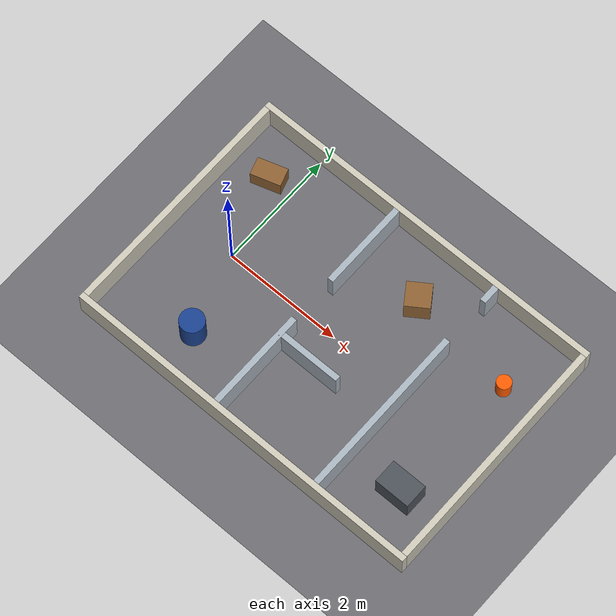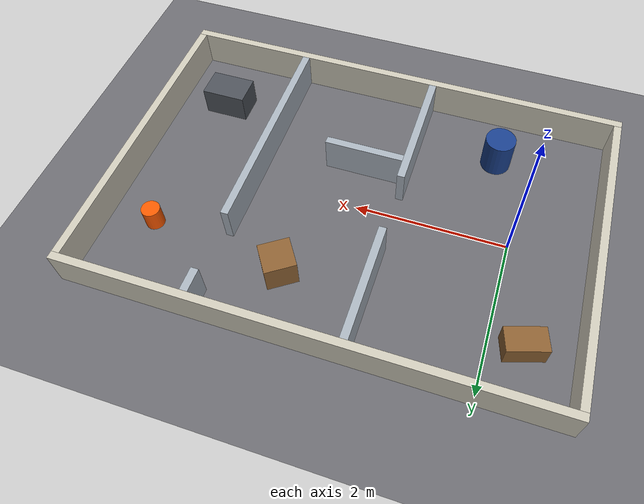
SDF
<?xml version="1.0"?>
<sdf version="1.9">
  <world name="firehouse">
    <!-- 4 ms steps. With 1 ms steps and the full Nav2 stack running, a 12-core PC
         could only simulate at 0.3x real time, which slows every sensor to match. -->
    <physics name="4ms" type="ignored">
      <max_step_size>0.004</max_step_size>
      <real_time_factor>1.0</real_time_factor>
    </physics>

    <plugin filename="gz-sim-physics-system" name="gz::sim::systems::Physics" />
    <plugin filename="gz-sim-user-commands-system" name="gz::sim::systems::UserCommands" />
    <plugin filename="gz-sim-scene-broadcaster-system" name="gz::sim::systems::SceneBroadcaster" />
    <plugin filename="gz-sim-sensors-system" name="gz::sim::systems::Sensors">
      <render_engine>ogre2</render_engine>
    </plugin>

    <scene>
      <ambient>0.45 0.45 0.48 1</ambient>
      <background>0.10 0.11 0.13 1</background>
      <shadows>true</shadows>
    </scene>

    <light name="ceiling" type="directional">
      <cast_shadows>true</cast_shadows>
      <pose>0 0 10 0 0 0</pose>
      <diffuse>0.85 0.85 0.82 1</diffuse>
      <specular>0.2 0.2 0.2 1</specular>
      <direction>-0.3 0.2 -0.93</direction>
    </light>

    <model name="floor">
      <static>true</static>
      <link name="link">
        <collision name="collision">
          <geometry><plane><normal>0 0 1</normal><size>20 20</size></plane></geometry>
        </collision>
        <visual name="visual">
          <geometry><plane><normal>0 0 1</normal><size>20 20</size></plane></geometry>
          <material>
            <ambient>0.42 0.42 0.44 1</ambient>
            <diffuse>0.42 0.42 0.44 1</diffuse>
            <specular>0.05 0.05 0.05 1</specular>
          </material>
        </visual>
      </link>
    </model>

    <!-- Walls: 0.1 m thick, 0.5 m tall (the LiDAR scans at 0.22 m). -->
    <model name="walls">
      <static>true</static>
      <link name="link">
        <!-- outer shell -->
        <collision name="south_c"><pose>2 -2.05 0.25 0 0 0</pose><geometry><box><size>6.2 0.1 0.5</size></box></geometry></collision>
        <visual name="south_v"><pose>2 -2.05 0.25 0 0 0</pose><geometry><box><size>6.2 0.1 0.5</size></box></geometry><material><ambient>0.80 0.78 0.72 1</ambient><diffuse>0.80 0.78 0.72 1</diffuse></material></visual>
        <collision name="north_c"><pose>2 2.05 0.25 0 0 0</pose><geometry><box><size>6.2 0.1 0.5</size></box></geometry></collision>
        <visual name="north_v"><pose>2 2.05 0.25 0 0 0</pose><geometry><box><size>6.2 0.1 0.5</size></box></geometry><material><ambient>0.80 0.78 0.72 1</ambient><diffuse>0.80 0.78 0.72 1</diffuse></material></visual>
        <collision name="west_c"><pose>-1.05 0 0.25 0 0 0</pose><geometry><box><size>0.1 4.0 0.5</size></box></geometry></collision>
        <visual name="west_v"><pose>-1.05 0 0.25 0 0 0</pose><geometry><box><size>0.1 4.0 0.5</size></box></geometry><material><ambient>0.80 0.78 0.72 1</ambient><diffuse>0.80 0.78 0.72 1</diffuse></material></visual>
        <collision name="east_c"><pose>5.05 0 0.25 0 0 0</pose><geometry><box><size>0.1 4.0 0.5</size></box></geometry></collision>
        <visual name="east_v"><pose>5.05 0 0.25 0 0 0</pose><geometry><box><size>0.1 4.0 0.5</size></box></geometry><material><ambient>0.80 0.78 0.72 1</ambient><diffuse>0.80 0.78 0.72 1</diffuse></material></visual>

        <!-- west | middle divider at x = 1.5, door at y = -0.3 .. 0.5 -->
        <collision name="div_a_south_c"><pose>1.5 -1.15 0.25 0 0 0</pose><geometry><box><size>0.1 1.7 0.5</size></box></geometry></collision>
        <visual name="div_a_south_v"><pose>1.5 -1.15 0.25 0 0 0</pose><geometry><box><size>0.1 1.7 0.5</size></box></geometry><material><ambient>0.66 0.70 0.74 1</ambient><diffuse>0.66 0.70 0.74 1</diffuse></material></visual>
        <collision name="div_a_north_c"><pose>1.5 1.25 0.25 0 0 0</pose><geometry><box><size>0.1 1.5 0.5</size></box></geometry></collision>
        <visual name="div_a_north_v"><pose>1.5 1.25 0.25 0 0 0</pose><geometry><box><size>0.1 1.5 0.5</size></box></geometry><material><ambient>0.66 0.70 0.74 1</ambient><diffuse>0.66 0.70 0.74 1</diffuse></material></visual>

        <!-- middle | east divider at x = 3.4, door at y = 0.9 .. 1.7 -->
        <collision name="div_b_south_c"><pose>3.4 -0.55 0.25 0 0 0</pose><geometry><box><size>0.1 2.9 0.5</size></box></geometry></collision>
        <visual name="div_b_south_v"><pose>3.4 -0.55 0.25 0 0 0</pose><geometry><box><size>0.1 2.9 0.5</size></box></geometry><material><ambient>0.66 0.70 0.74 1</ambient><diffuse>0.66 0.70 0.74 1</diffuse></material></visual>
        <collision name="div_b_north_c"><pose>3.4 1.85 0.25 0 0 0</pose><geometry><box><size>0.1 0.3 0.5</size></box></geometry></collision>
        <visual name="div_b_north_v"><pose>3.4 1.85 0.25 0 0 0</pose><geometry><box><size>0.1 0.3 0.5</size></box></geometry><material><ambient>0.66 0.70 0.74 1</ambient><diffuse>0.66 0.70 0.74 1</diffuse></material></visual>

        <!-- partition inside the middle room -->
        <collision name="partition_c"><pose>2.05 -0.6 0.25 0 0 0</pose><geometry><box><size>1.1 0.1 0.5</size></box></geometry></collision>
        <visual name="partition_v"><pose>2.05 -0.6 0.25 0 0 0</pose><geometry><box><size>1.1 0.1 0.5</size></box></geometry><material><ambient>0.66 0.70 0.74 1</ambient><diffuse>0.66 0.70 0.74 1</diffuse></material></visual>
      </link>
    </model>

    <!-- Obstacles -->
    <model name="crate_west">
      <static>true</static>
      <pose>-0.4 1.3 0.15 0 0 0.3</pose>
      <link name="link">
        <collision name="collision"><geometry><box><size>0.5 0.3 0.3</size></box></geometry></collision>
        <visual name="visual">
          <geometry><box><size>0.5 0.3 0.3</size></box></geometry>
          <material><ambient>0.55 0.38 0.20 1</ambient><diffuse>0.55 0.38 0.20 1</diffuse></material>
        </visual>
      </link>
    </model>

    <model name="barrel">
      <static>true</static>
      <pose>0.4 -1.3 0.25 0 0 0</pose>
      <link name="link">
        <collision name="collision"><geometry><cylinder><radius>0.2</radius><length>0.5</length></cylinder></geometry></collision>
        <visual name="visual">
          <geometry><cylinder><radius>0.2</radius><length>0.5</length></cylinder></geometry>
          <material><ambient>0.10 0.25 0.55 1</ambient><diffuse>0.10 0.25 0.55 1</diffuse></material>
        </visual>
      </link>
    </model>

    <model name="crate_middle">
      <static>true</static>
      <pose>2.6 1.2 0.2 0 0 0.6</pose>
      <link name="link">
        <collision name="collision"><geometry><box><size>0.4 0.4 0.4</size></box></geometry></collision>
        <visual name="visual">
          <geometry><box><size>0.4 0.4 0.4</size></box></geometry>
          <material><ambient>0.55 0.38 0.20 1</ambient><diffuse>0.55 0.38 0.20 1</diffuse></material>
        </visual>
      </link>
    </model>

    <model name="desk">
      <static>true</static>
      <pose>4.3 -1.2 0.2 0 0 0</pose>
      <link name="link">
        <collision name="collision"><geometry><box><size>0.6 0.4 0.4</size></box></geometry></collision>
        <visual name="visual">
          <geometry><box><size>0.6 0.4 0.4</size></box></geometry>
          <material><ambient>0.30 0.32 0.35 1</ambient><diffuse>0.30 0.32 0.35 1</diffuse></material>
        </visual>
      </link>
    </model>

    <!-- The fire: glows, lights the room, and is hot to a Gazebo thermal camera. -->
    <model name="fire">
      <static>true</static>
      <pose>4.4 1.0 0.15 0 0 0</pose>
      <link name="link">
        <collision name="collision"><geometry><cylinder><radius>0.12</radius><length>0.3</length></cylinder></geometry></collision>
        <visual name="visual">
          <geometry><cylinder><radius>0.12</radius><length>0.3</length></cylinder></geometry>
          <material>
            <ambient>1.0 0.35 0.0 1</ambient>
            <diffuse>1.0 0.35 0.0 1</diffuse>
            <emissive>1.0 0.30 0.0 1</emissive>
          </material>
          <plugin filename="gz-sim-thermal-system" name="gz::sim::systems::Thermal">
            <temperature>600</temperature>
          </plugin>
        </visual>
      </link>
    </model>
    <light name="fire_glow" type="point">
      <pose>4.4 1.0 0.5 0 0 0</pose>
      <diffuse>1.0 0.45 0.1 1</diffuse>
      <specular>0.3 0.1 0.0 1</specular>
      <attenuation>
        <range>4</range>
        <constant>0.3</constant>
        <linear>0.2</linear>
        <quadratic>0.1</quadratic>
      </attenuation>
      <cast_shadows>false</cast_shadows>
    </light>
  </world>
</sdf>
